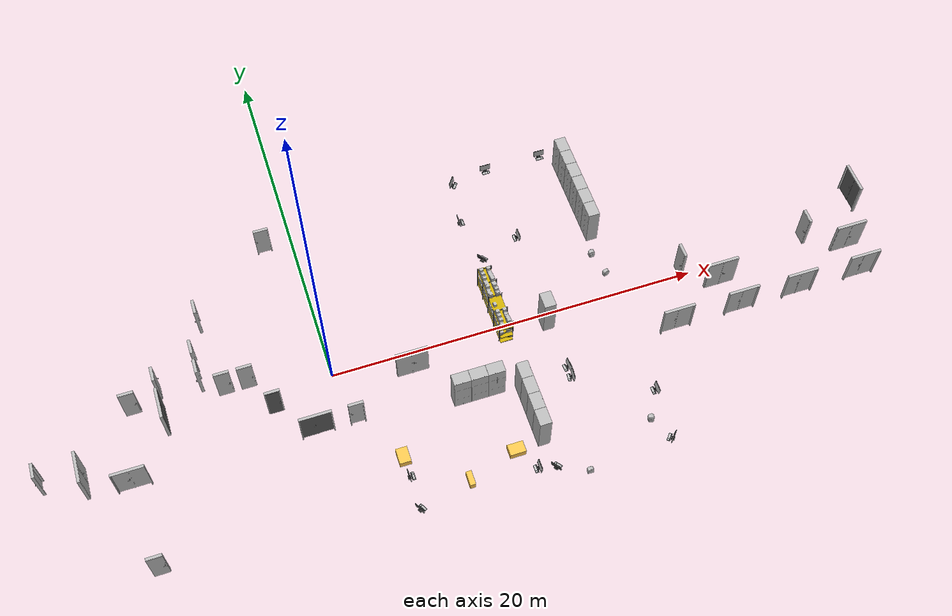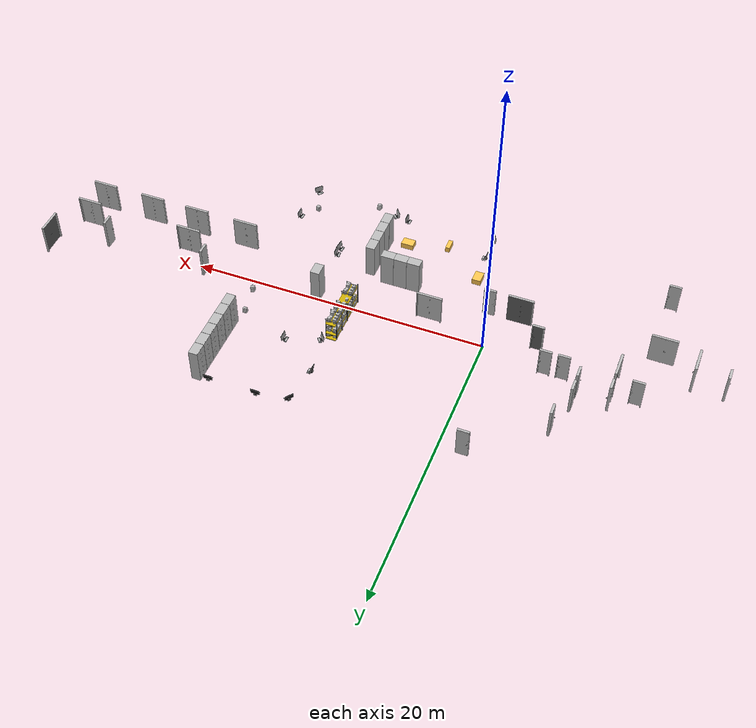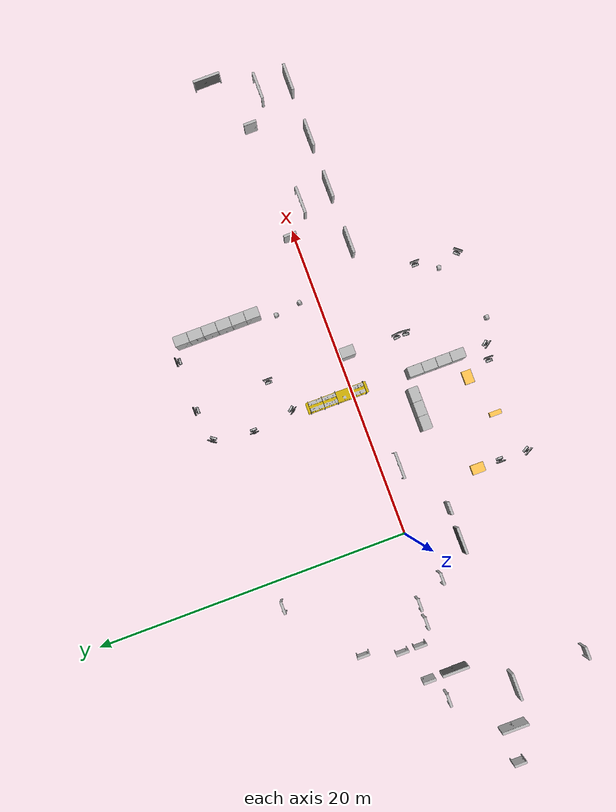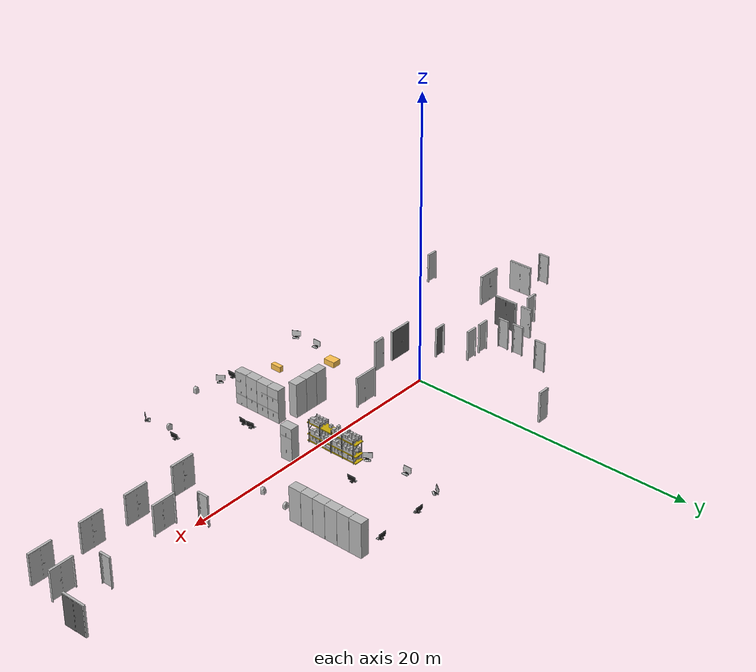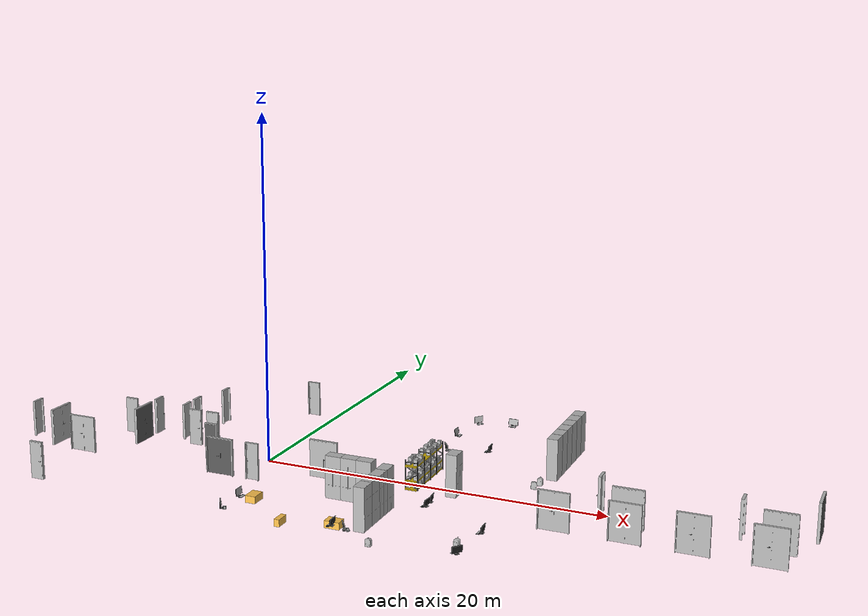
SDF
<sdf version="1.6">
 <world name="default">
  <gravity>0 0 -9.8</gravity>
  <physics default="0" name="default_physics" type="ode">
   <max_step_size>0.001</max_step_size>
   <real_time_factor>1</real_time_factor>
   <real_time_update_rate>1000</real_time_update_rate>
  </physics>
  <model name="door_70_close_13">
   <include><uri>model://models/door_70_close</uri></include>
   <pose>-5.878 5.014 0 0 0 -1.5708</pose>
  </model>
  <model name="door_70_close_04">
   <include><uri>model://models/door_70_close</uri></include>
   <pose>-1.51 8.538 0 0 0 3.14159</pose>
  </model>
  <model name="door_160_close_01">
   <include><uri>model://models/door_160_close</uri></include>
   <pose>4.058 -1.04 0 0 0 3.14159</pose>
  </model>
  <model name="box_shelf_01">
   <include><uri>model://models/box_shelf</uri></include>
   <pose>9.25 1.05 0 0 0 -1.5708</pose>
  </model>
  <model name="monitor_keyboard_02">
   <include><uri>model://models/monitor_keyboard</uri></include>
   <pose>9.400 9.11 0.76 0 0 2.5026</pose>
  </model>
  <model name="monitor_keyboard_01">
   <include><uri>model://models/monitor_keyboard</uri></include>
   <pose>9.000 6.5085 0.76 0 0 3.14159</pose>
  </model>
  <model name="monitor_keyboard_03">
   <include><uri>model://models/monitor_keyboard</uri></include>
   <pose>11.497 9.500 0.76 0 0 1.5708</pose>
  </model>
  <model name="monitor_keyboard_04">
   <include><uri>model://models/monitor_keyboard</uri></include>
   <pose>14.7 9.500 0.76 0 0 1.5708</pose>
  </model>
  <model name="storage_90_01">
   <include><uri>model://models/storage_90</uri></include>
   <pose>15.76 8.7 0 0 0 -1.5708</pose>
  </model>
  <model name="storage_90_02">
   <include><uri>model://models/storage_90</uri></include>
   <pose>15.76 7.79 0 0 0 -1.5708</pose>
  </model>
  <model name="storage_90_03">
   <include><uri>model://models/storage_90</uri></include>
   <pose>15.76 6.88 0 0 0 -1.5708</pose>
  </model>
  <model name="storage_90_04">
   <include><uri>model://models/storage_90</uri></include>
   <pose>15.76 5.97 0 0 0 -1.5708</pose>
  </model>
  <model name="storage_90_05">
   <include><uri>model://models/storage_90</uri></include>
   <pose>15.76 5.06 0 0 0 -1.5708</pose>
  </model>
  <model name="storage_90_07">
   <include><uri>model://models/storage_90</uri></include>
   <pose>15.76 4.15 0 0 0 -1.5708</pose>
  </model>
  <model name="backpack_red_01">
   <include><uri>model://models/backpack_red</uri></include>
   <pose>15.57 1.165 0.4 0 0 3.4</pose>
  </model>
  <model name="backpack_green_01">
   <include><uri>model://models/backpack_green</uri></include>
   <pose>15.4 2.74 0 0 0 0</pose>
  </model>
  <model name="storage_90_06">
   <include><uri>model://models/storage_90</uri></include>
   <pose>11.60 -0.455 0 0 0 1.5708</pose>
  </model>
  <model name="monitor_keyboard_06">
   <include><uri>model://models/monitor_keyboard</uri></include>
   <pose>9.45 3.8 0.76 0 0 3.8</pose>
  </model>
  <model name="monitor_keyboard_05">
   <include><uri>model://models/monitor_keyboard</uri></include>
   <pose>11.8 4.65  0.76 0 0 0</pose>
  </model>
  <model name="door_160_close_02">
   <include><uri>model://models/door_160_close</uri></include>
   <pose>21.273 -1.04 0 0 0 3.14159</pose>
  </model>
  <model name="door_70_close_05">
   <include><uri>model://models/door_70_close</uri></include>
   <pose>19.51 0.3 0 0 0 -1.5708</pose>
  </model>
  <model name="door_160_close_03">
   <include><uri>model://models/door_160_close</uri></include>
   <pose>28.770 -1.04 0 0 0 3.14159</pose>
  </model>
  <model name="door_160_metal_close_03">
   <include><uri>model://models/door_160_metal_close</uri></include>
   <pose>30.32 1.738 0 0 0 -1.5708</pose>
  </model>
  <model name="door_70_close_06">
   <include><uri>model://models/door_70_close</uri></include>
   <pose>26.76 0.21 0 0 0 -1.5708</pose>
  </model>
  <model name="door_160_close_04">
   <include><uri>model://models/door_160_close</uri></include>
   <pose>28.620 -2.975 0 0 0 0</pose>
  </model>
  <model name="door_160_close_05">
   <include><uri>model://models/door_160_close</uri></include>
   <pose>24.96 -2.975 0 0 0 0</pose>
  </model>
  <model name="door_160_close_06">
   <include><uri>model://models/door_160_close</uri></include>
   <pose>21.601 -2.975 0 0 0 0</pose>
  </model>
  <model name="door_160_close_07">
   <include><uri>model://models/door_160_close</uri></include>
   <pose>17.955 -2.975 0 0 0 0</pose>
  </model>
  <model name="monitor_keyboard_07">
   <include><uri>model://models/monitor_keyboard</uri></include>
   <pose>15.45 -6.32 0.76 0 0 0</pose>
  </model>
  <model name="backpack_red_02">
   <include><uri>model://models/backpack_red</uri></include>
   <pose>14.6 -7.67 0.45 0 0 -0.255</pose>
  </model>
  <model name="monitor_keyboard_08">
   <include><uri>model://models/monitor_keyboard</uri></include>
   <pose>15.2 -9.1 0.76 0 0 -0.69</pose>
  </model>
  <model name="backpack_green_02">
   <include><uri>model://models/backpack_green</uri></include>
   <pose>10.7 -9.32 0.45 0 0 3.1</pose>
  </model>
  <model name="monitor_keyboard_09">
   <include><uri>model://models/monitor_keyboard</uri></include>
   <pose>9.1 -8.78 0.76 0 0 3.8</pose>
  </model>
  <model name="storage_90_08">
   <include><uri>model://models/storage_90</uri></include>
   <pose>9.11 -3.915 0 0 0 1.5708</pose>
  </model>
  <model name="storage_90_09">
   <include><uri>model://models/storage_90</uri></include>
   <pose>9.11 -4.825 0 0 0 1.5708</pose>
  </model>
  <model name="storage_90_10">
   <include><uri>model://models/storage_90</uri></include>
   <pose>9.11 -5.735 0 0 0 1.5708</pose>
  </model>
  <model name="storage_90_11">
   <include><uri>model://models/storage_90</uri></include>
   <pose>9.11 -6.645 0 0 0 1.5708</pose>
  </model>
  <model name="monitor_keyboard_10">
   <include><uri>model://models/monitor_keyboard</uri></include>
   <pose>11.65 -3.68 0.76 0 0 0.1</pose>
  </model>
  <model name="monitor_keyboard_11">
   <include><uri>model://models/monitor_keyboard</uri></include>
   <pose>11.65 -4.3 0.76 0 0 -0.1</pose>
  </model>
  <model name="monitor_keyboard_13">
   <include><uri>model://models/monitor_keyboard</uri></include>
   <pose>2.102 -8.8 0.76 0 0 3.64159</pose>
  </model>
  <model name="monitor_keyboard_14">
   <include><uri>model://models/monitor_keyboard</uri></include>
   <pose>8.35 -8.5 0.76 0 0 0</pose>
  </model>
  <model name="Box_33x15_02">
   <include><uri>model://models/Box_33x15</uri></include>
   <pose>7.67 -7 0 0 0 0</pose>
  </model>
  <model name="Box_15x30_01">
   <include><uri>model://models/Box_15x30</uri></include>
   <pose>5.0 -7.8 0 0 0 0</pose>
  </model>
  <model name="monitor_keyboard_12">
   <include><uri>model://models/monitor_keyboard</uri></include>
   <pose>2.102 -6.988 0.76 0 0 3.14159</pose>
  </model>
  <model name="Box_33x15_01">
   <include><uri>model://models/Box_33x15</uri></include>
   <pose>2.192 -5.587 0 0 0 1.5708</pose>
  </model>
  <model name="storage_90_12">
   <include><uri>model://models/storage_90</uri></include>
   <pose>5.942 -3.38 0 0 0 0</pose>
  </model>
  <model name="storage_90_13">
   <include><uri>model://models/storage_90</uri></include>
   <pose>6.846 -3.38 0 0 0 0</pose>
  </model>
  <model name="storage_90_14">
   <include><uri>model://models/storage_90</uri></include>
   <pose>7.75 -3.38 0 0 0 0</pose>
  </model>
  <model name="door_70_close_01">
   <include><uri>model://models/door_70_close</uri></include>
   <pose>0.590 -2.975 0 0 0 3.14159</pose>
  </model>
  <model name="door_160_metal_close_01">
   <include><uri>model://models/door_160_metal_close</uri></include>
   <pose>-1.484 -2.975 0 0 0 0</pose>
  </model>
  <model name="door_160_close_08">
   <include><uri>model://models/door_160_close</uri></include>
   <pose>-10.807 -2.975 0 0 0 0</pose>
  </model>
  <model name="door_70_close_07">
   <include><uri>model://models/door_70_close</uri></include>
   <pose>-10.4 -7.646 0 0 0 0</pose>
  </model>
  <model name="door_160_close_09">
   <include><uri>model://models/door_160_close</uri></include>
   <pose>-13.095 -2.0065 0 0 0 -1.5708</pose>
  </model>
  <model name="door_70_close_08">
   <include><uri>model://models/door_70_close</uri></include>
   <pose>-15.14 -1.55 0 0 0 -1.5708</pose>
  </model>
  <model name="door_160_metal_close_02">
   <include><uri>model://models/door_160_metal_close</uri></include>
   <pose>-8.672 0.145 0 0 0 -1.5708</pose>
  </model>
  <model name="door_70_close_02">
   <include><uri>model://models/door_70_close</uri></include>
   <pose>-8.672 1.82 0 0 0 1.5708</pose>
  </model>
  <model name="door_70_close_09">
   <include><uri>model://models/door_70_close</uri></include>
   <pose>-10.14 1.125 0 0 0 0</pose>
  </model>
  <model name="door_70_close_10">
   <include><uri>model://models/door_70_close</uri></include>
   <pose>-6.53 2.75 0 0 0 -1.5708</pose>
  </model>
  <model name="door_70_close_03">
   <include><uri>model://models/door_70_close</uri></include>
   <pose>-6.53 1.592 0 0 0 -1.5708</pose>
  </model>
  <model name="door_70_close_11">
   <include><uri>model://models/door_70_close</uri></include>
   <pose>-5.39 0.77 0 0 0 0</pose>
  </model>
  <model name="door_70_close_12">
   <include><uri>model://models/door_70_close</uri></include>
   <pose>-4.21 0.77 0 0 0 0</pose>
  </model>
  <model name="door_70_metal_close">
   <include><uri>model://models/door_70_metal_close</uri></include>
   <pose>-3.2 -1.04 0 0 0 0</pose>
  </model>
  <light name="ceiling_light_01" type="point">
   <pose>11 7 3.21824 0 0 0</pose>
   <diffuse>1 1 1 1</diffuse>
   <specular>1 1 1 1</specular>
   <intensity>0.2</intensity>
   <attenuation>
    <range>10</range>
    <constant>0.3</constant>
    <linear>0.01</linear>
    <quadratic>0.001</quadratic>
   </attenuation>
   <direction>0.1 0.1 -1</direction>
  </light>
  <light name="ceiling_light_02" type="point">
   <pose>14 7 3.21824 0 0 0</pose>
   <diffuse>1 1 1 1</diffuse>
   <specular>1 1 1 1</specular>
   <intensity>0.2</intensity>
   <attenuation>
    <range>10</range>
    <constant>0.3</constant>
    <linear>0.01</linear>
    <quadratic>0.001</quadratic>
   </attenuation>
   <direction>0.1 0.1 -1</direction>
  </light>
  <light name="ceiling_light_03" type="point">
   <pose>11 2 3.21824 0 0 0</pose>
   <diffuse>1 1 1 1</diffuse>
   <specular>1 1 1 1</specular>
   <intensity>0.2</intensity>
   <attenuation>
    <range>10</range>
    <constant>0.3</constant>
    <linear>0.01</linear>
    <quadratic>0.001</quadratic>
   </attenuation>
   <direction>0.1 0.1 -1</direction>
  </light>
  <light name="ceiling_light_04" type="point">
   <pose>14 2 3.21824 0 0 0</pose>
   <diffuse>1 1 1 1</diffuse>
   <specular>1 1 1 1</specular>
   <intensity>0.2</intensity>
   <attenuation>
    <range>10</range>
    <constant>0.3</constant>
    <linear>0.01</linear>
    <quadratic>0.001</quadratic>
   </attenuation>
   <direction>0.1 0.1 -1</direction>
  </light>
  <light name="ceiling_light_05" type="point">
   <pose>12.5 -6.2 3.21824 0 0 0</pose>
   <diffuse>1 1 1 1</diffuse>
   <specular>1 1 1 1</specular>
   <intensity>0.55</intensity>
   <attenuation>
    <range>6</range>
    <constant>0.3</constant>
    <linear>0.01</linear>
    <quadratic>0.001</quadratic>
   </attenuation>
   <direction>0.1 0.1 -1</direction>
  </light>
  <light name="ceiling_light_07" type="point">
   <pose>3.2 -4.3 3.21824 0 0 0</pose>
   <diffuse>1 1 1 1</diffuse>
   <specular>1 1 1 1</specular>
   <intensity>0.22</intensity>
   <attenuation>
    <range>9</range>
    <constant>0.3</constant>
    <linear>0.01</linear>
    <quadratic>0.001</quadratic>
   </attenuation>
   <direction>0.1 0.1 -1</direction>
  </light>
  <light name="ceiling_light_08" type="point">
   <pose>3.2 -8.3 3.21824 0 0 0</pose>
   <diffuse>1 1 1 1</diffuse>
   <specular>1 1 1 1</specular>
   <intensity>0.22</intensity>
   <attenuation>
    <range>9</range>
    <constant>0.3</constant>
    <linear>0.01</linear>
    <quadratic>0.001</quadratic>
   </attenuation>
   <direction>0.1 0.1 -1</direction>
  </light>
  <light name="ceiling_light_09" type="point">
   <pose>7.2 -4.3 3.21824 0 0 0</pose>
   <diffuse>1 1 1 1</diffuse>
   <specular>1 1 1 1</specular>
   <intensity>0.22</intensity>
   <attenuation>
    <range>9</range>
    <constant>0.3</constant>
    <linear>0.01</linear>
    <quadratic>0.001</quadratic>
   </attenuation>
   <direction>0.1 0.1 -1</direction>
  </light>
  <light name="ceiling_light_10" type="point">
   <pose>7.2 -8.3 3.21824 0 0 0</pose>
   <diffuse>1 1 1 1</diffuse>
   <specular>1 1 1 1</specular>
   <intensity>0.22</intensity>
   <attenuation>
    <range>9</range>
    <constant>0.3</constant>
    <linear>0.01</linear>
    <quadratic>0.001</quadratic>
   </attenuation>
   <direction>0.1 0.1 -1</direction>
  </light>
  <light name="ceiling_light_11" type="point">
   <pose>-1.5 -6.3 3.21824 0 0 0</pose>
   <diffuse>1 1 1 1</diffuse>
   <specular>1 1 1 1</specular>
   <intensity>0.4</intensity>
   <attenuation>
    <range>10</range>
    <constant>0.3</constant>
    <linear>0.01</linear>
    <quadratic>0.001</quadratic>
   </attenuation>
   <direction>0.1 0.1 -1</direction>
  </light>
  <light name="ceiling_light_12" type="point">
   <pose>-6 -6.3 3.21824 0 0 0</pose>
   <diffuse>1 1 1 1</diffuse>
   <specular>1 1 1 1</specular>
   <intensity>0.4</intensity>
   <attenuation>
    <range>10</range>
    <constant>0.3</constant>
    <linear>0.01</linear>
    <quadratic>0.001</quadratic>
   </attenuation>
   <direction>0.1 0.1 -1</direction>
  </light>
  <light name="ceiling_light_13" type="point">
   <pose>-12.5 -6.3 3.21824 0 0 0</pose>
   <diffuse>1 1 1 1</diffuse>
   <specular>1 1 1 1</specular>
   <intensity>0.4</intensity>
   <attenuation>
    <range>10</range>
    <constant>0.3</constant>
    <linear>0.01</linear>
    <quadratic>0.001</quadratic>
   </attenuation>
   <direction>0.1 0.1 -1</direction>
  </light>
  <light name="ceiling_light_14" type="point">
   <pose>-17 -6.3 3.21824 0 0 0</pose>
   <diffuse>1 1 1 1</diffuse>
   <specular>1 1 1 1</specular>
   <intensity>0.4</intensity>
   <attenuation>
    <range>10</range>
    <constant>0.3</constant>
    <linear>0.01</linear>
    <quadratic>0.001</quadratic>
   </attenuation>
   <direction>0.1 0.1 -1</direction>
  </light>
  <light name="ceiling_light_15" type="point">
   <pose>-10.1 -8.8 3.21824 0 0 0</pose>
   <diffuse>1 1 1 1</diffuse>
   <specular>1 1 1 1</specular>
   <intensity>0.5</intensity>
   <attenuation>
    <range>5</range>
    <constant>0.3</constant>
    <linear>0.01</linear>
    <quadratic>0.001</quadratic>
   </attenuation>
   <direction>0.1 0.1 -1</direction>
  </light>
  <light name="ceiling_light_16" type="point">
   <pose>-17 -2 3.21824 0 0 0</pose>
   <diffuse>1 1 1 1</diffuse>
   <specular>1 1 1 1</specular>
   <intensity>0.5</intensity>
   <attenuation>
    <range>5</range>
    <constant>0.3</constant>
    <linear>0.01</linear>
    <quadratic>0.001</quadratic>
   </attenuation>
   <direction>0.1 0.1 -1</direction>
  </light>
  <light name="ceiling_light_17" type="point">
   <pose>-16 2 3.21824 0 0 0</pose>
   <diffuse>1 1 1 1</diffuse>
   <specular>1 1 1 1</specular>
   <intensity>0.4</intensity>
   <attenuation>
    <range>10</range>
    <constant>0.3</constant>
    <linear>0.01</linear>
    <quadratic>0.001</quadratic>
   </attenuation>
   <direction>0.1 0.1 -1</direction>
  </light>
  <light name="ceiling_light_18" type="point">
   <pose>-16 7 3.21824 0 0 0</pose>
   <diffuse>1 1 1 1</diffuse>
   <specular>1 1 1 1</specular>
   <intensity>0.4</intensity>
   <attenuation>
    <range>10</range>
    <constant>0.3</constant>
    <linear>0.01</linear>
    <quadratic>0.001</quadratic>
   </attenuation>
   <direction>0.1 0.1 -1</direction>
  </light>
 </world>
</sdf>

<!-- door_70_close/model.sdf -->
<sdf version="1.6">
  <model name='door_70_close'>
    <static>true</static>
    <link name="body">

        <visual name="visual">
          <geometry>
            <mesh><uri>model://models/door_70_close/meshes/door_70_close.dae</uri></mesh>
          </geometry>
        </visual>

        <collision name="collision">
          <geometry>
            <mesh><uri>model://models/door_70_close/meshes/door_70_close.dae</uri></mesh>
          </geometry>
        </collision>

    </link>
  </model>
</sdf>

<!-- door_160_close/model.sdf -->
<sdf version="1.6">
  <model name='door_160_close'>
    <static>true</static>
    <link name="body">

        <visual name="visual">
          <geometry>
            <mesh><uri>model://models/door_160_close/meshes/door_160_close.dae</uri></mesh>
          </geometry>
        </visual>

        <collision name="collision">
          <geometry>
            <mesh><uri>model://models/door_160_close/meshes/door_160_close.dae</uri></mesh>
          </geometry>
        </collision>

    </link>
  </model>
</sdf>

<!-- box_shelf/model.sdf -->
<sdf version="1.6">
  <model name='box_shelf'>
    <static>true</static>
    <link name="body">

        <visual name="visual">
          <geometry>
            <mesh><uri>model://models/box_shelf/meshes/box_shelf.dae</uri></mesh>
          </geometry>
        </visual>

        <collision name="collision">
          <geometry>
            <mesh><uri>model://models/box_shelf/meshes/box_shelf.dae</uri></mesh>
          </geometry>
        </collision>

    </link>
  </model>
</sdf>

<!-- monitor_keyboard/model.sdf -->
<sdf version="1.6">
  <model name='monitor_keyboard'>
    <static>true</static>
    <link name="body">

        <visual name="visual">
          <geometry>
            <mesh><uri>model://models/monitor_keyboard/meshes/monitor_keyboard.dae</uri></mesh>
          </geometry>
        </visual>

        <collision name="collision">
          <geometry>
            <mesh><uri>model://models/monitor_keyboard/meshes/monitor_keyboard.dae</uri></mesh>
          </geometry>
        </collision>

    </link>
  </model>
</sdf>

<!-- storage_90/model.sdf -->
<sdf version="1.6">
  <model name='storage_90'>
    <static>true</static>
    <link name="body">

        <visual name="visual">
          <geometry>
            <mesh><uri>model://models/storage_90/meshes/storage_90.dae</uri></mesh>
          </geometry>
        </visual>

        <collision name="collision">
          <geometry>
            <mesh><uri>model://models/storage_90/meshes/storage_90.dae</uri></mesh>
          </geometry>
        </collision>

    </link>
  </model>
</sdf>

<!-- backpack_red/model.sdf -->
<sdf version='1.6'>
  <model name='backpack_red'>
    <static>true</static>
    <link name='link'>
      <collision name='collision'>
        <geometry>
          <mesh>
            <uri>model://models/backpack_red/meshes/backpack.dae</uri>
          </mesh>
        </geometry>
      </collision>
      <visual name='visual'>
        <geometry>
          <mesh>
            <uri>model://models/backpack_red/meshes/backpack.dae</uri>
          </mesh>
        </geometry>
      </visual>
    </link>
  </model>
</sdf>

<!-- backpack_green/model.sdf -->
<sdf version='1.6'>
  <model name='backpack_green'>
    <static>true</static>
    <link name='link'>
      <collision name='collision'>
        <geometry>
          <mesh>
            <uri>model://models/backpack_green/meshes/backpack.dae</uri>
          </mesh>
        </geometry>
      </collision>
      <visual name='visual'>
        <geometry>
          <mesh>
            <uri>model://models/backpack_green/meshes/backpack.dae</uri>
          </mesh>
        </geometry>
      </visual>
    </link>
  </model>
</sdf>

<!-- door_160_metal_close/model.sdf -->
<sdf version="1.6">
  <model name='door_160_metal_close'>
    <static>true</static>
    <link name="body">

        <visual name="visual">
          <geometry>
            <mesh><uri>model://models/door_160_metal_close/meshes/door_160_metal_close.dae</uri></mesh>
          </geometry>
        </visual>

        <collision name="collision">
          <geometry>
            <mesh><uri>model://models/door_160_metal_close/meshes/door_160_metal_close.dae</uri></mesh>
          </geometry>
        </collision>

    </link>
  </model>
</sdf>

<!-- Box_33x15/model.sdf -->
<sdf version='1.6'>
  <model name='Box_33x15'>
    <link name='Wall'>
    <pose frame=''>0 0 0.1985 0 0 0</pose>
	<inertial>
	  <mass>5</mass>
	   <inertia>
	     <ixx>0.2157</ixx>
	     <iyy>0.3597</iyy>
	     <izz>0.4440</izz>
    	     <ixy>0</ixy>
	     <ixz>0</ixz>
	     <iyz>0</iyz>
	   </inertia>
	</inertial>
      <collision name='Wall_Collision'>
        <geometry>
          <box>
            <size>0.84 0.6 0.397 </size>
          </box>
        </geometry>
       </collision>
     <visual name='Wall_Visual'>
  <geometry>
    <box>
      <size>0.84 0.6 0.397 </size>
    </box>
  </geometry>
  <material>

    <ambient>1 0.764706 0.305882 1</ambient>
    <diffuse>1 0.764706 0.305882 1</diffuse>
    <specular>0.1 0.1 0.1 1</specular>
    <emissive>0 0 0 0</emissive>
  </material>
</visual>

     </link>

    <static>1</static>
  </model>
</sdf>

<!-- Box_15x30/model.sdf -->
<sdf version='1.6'>
  <model name='Box_15x30'>
    <link name='Wall'>
     <pose frame=''>0 0.0 0.1985 0 0 0</pose>
	<inertial>
	  <mass>5</mass>
	   <inertia>
	     <ixx>0.3089</ixx>
	     <iyy>0.1022</iyy>
	     <izz>0.2797</izz>
    	     <ixy>0</ixy>
	     <ixz>0</ixz>
	     <iyz>0</iyz>
	   </inertia>
	</inertial>
      <collision name='Wall_Collision'>
        <geometry>
          <box>
            <size>0.296 0.764 0.397</size>
          </box>
        </geometry>
      </collision>
          <visual name='Wall_Visual'>
  <geometry>
    <box>
      <size>0.296 0.764 0.397 </size>
    </box>
  </geometry>
  <material>
    <ambient>1 0.764706 0.305882 1</ambient>
    <diffuse>1 0.764706 0.305882 1</diffuse>
    <specular>0.1 0.1 0.1 1</specular>
    <emissive>0 0 0 0</emissive>
  </material>
</visual>
     </link>

    <static>1</static>
  </model>
</sdf>

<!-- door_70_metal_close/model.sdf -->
<sdf version="1.6">
  <model name='door_70_metal_close'>
    <static>true</static>
    <link name="body">

        <visual name="visual">
          <geometry>
            <mesh><uri>model://models/door_70_metal_close/meshes/door_70_metal_close.dae</uri></mesh>
          </geometry>
        </visual>

        <collision name="collision">
          <geometry>
            <mesh><uri>model://models/door_70_metal_close/meshes/door_70_metal_close.dae</uri></mesh>
          </geometry>
        </collision>

    </link>
  </model>
</sdf>
